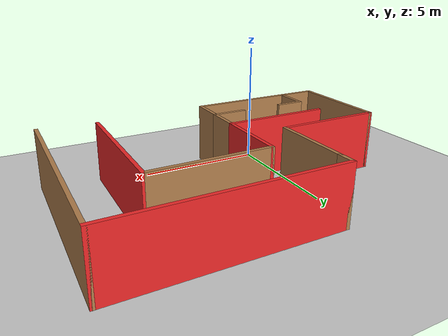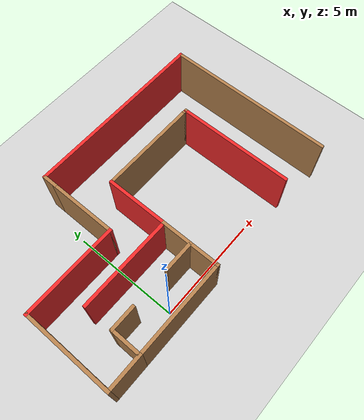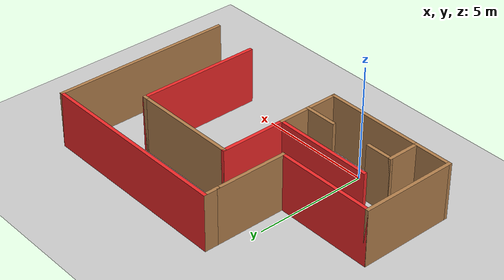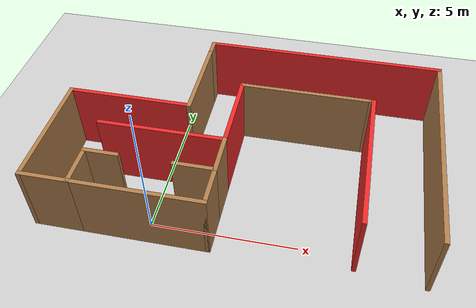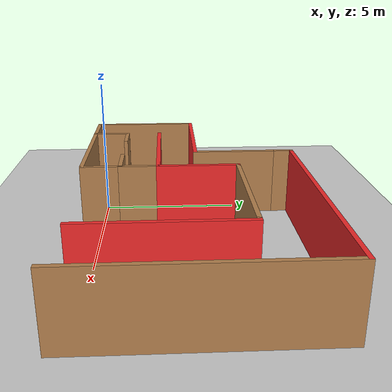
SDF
<sdf version="1.6">
 <world name="default">
  <light name="sun" type="directional">
   <pose>0 0 10 0 -0 0</pose>
   <diffuse>0.8 0.8 0.8 1</diffuse>
   <specular>0.2 0.2 0.2 1</specular>
   <attenuation>
    <range>1000</range>
    <constant>0.9</constant>
    <linear>0.01</linear>
    <quadratic>0.001</quadratic>
   </attenuation>
   <direction>-0.5 0.1 -0.9</direction>
  </light>
  <model name="ground_plane">
   <static>1</static>
   <link name="link">
    <collision name="collision">
     <geometry><plane><normal>0 0 1</normal><size>100 100</size></plane></geometry>
     <surface>
      <contact><collide_bitmask>65535</collide_bitmask></contact>
      <friction><ode><mu>100</mu><mu2>50</mu2></ode></friction>
     </surface>
    </collision>
    <visual name="visual">
     <cast_shadows>0</cast_shadows>
     <geometry><plane><normal>0 0 1</normal><size>100 100</size></plane></geometry>
     <material>
      <script><uri>file://media/materials/scripts/gazebo.material</uri><name>Gazebo/Grey</name></script>
     </material>
    </visual>
   </link>
  </model>
  <gravity>0 0 -9.8</gravity>
  <magnetic_field>6e-06 2.3e-05 -4.2e-05</magnetic_field>
  <atmosphere type="adiabatic"/>
  <physics name="default_physics" default="0" type="ode">
   <max_step_size>0.001</max_step_size>
   <real_time_factor>1</real_time_factor>
   <real_time_update_rate>1000</real_time_update_rate>
  </physics>
  <scene><ambient>0.4 0.4 0.4 1</ambient><background>0.7 0.7 0.7 1</background><shadows>1</shadows></scene>
  <audio><device>default</device></audio>
  <spherical_coordinates>
   <surface_model>EARTH_WGS84</surface_model>
   <latitude_deg>0</latitude_deg>
   <longitude_deg>0</longitude_deg>
   <elevation>0</elevation>
   <heading_deg>0</heading_deg>
  </spherical_coordinates>
  <model name="Untitled123">
   <pose>2.66631 3.26085 0 0 -0 0</pose>
   <link name="Wall_0">
    <collision name="Wall_0_Collision">
     <geometry><box><size>1.25 0.15 2.5</size></box></geometry>
     <pose>0 0 1.25 0 -0 0</pose>
    </collision>
    <visual name="Wall_0_Visual">
     <pose>0 0 1.25 0 -0 0</pose>
     <geometry><box><size>1.25 0.15 2.5</size></box></geometry>
     <material>
      <script><uri>file://media/materials/scripts/gazebo.material</uri><name>Gazebo/Wood</name></script>
      <ambient>1 1 1 1</ambient>
     </material>
     <meta><layer>0</layer></meta>
    </visual>
    <pose>-4.325 -2.525 0 0 -0 0</pose>
   </link>
   <link name="Wall_11">
    <collision name="Wall_11_Collision">
     <geometry><box><size>1.5 0.15 2.5</size></box></geometry>
     <pose>0 0 1.25 0 -0 0</pose>
    </collision>
    <visual name="Wall_11_Visual">
     <pose>0 0 1.25 0 -0 0</pose>
     <geometry><box><size>1.5 0.15 2.5</size></box></geometry>
     <material>
      <script><uri>file://media/materials/scripts/gazebo.material</uri><name>Gazebo/Wood</name></script>
      <ambient>1 1 1 1</ambient>
     </material>
     <meta><layer>0</layer></meta>
    </visual>
    <pose>-0.525 -1.85 0 0 -0 1.5708</pose>
   </link>
   <link name="Wall_12">
    <collision name="Wall_12_Collision">
     <geometry><box><size>4.5 0.15 2.5</size></box></geometry>
     <pose>0 0 1.25 0 -0 0</pose>
    </collision>
    <visual name="Wall_12_Visual">
     <pose>0 0 1.25 0 -0 0</pose>
     <geometry><box><size>4.5 0.15 2.5</size></box></geometry>
     <material>
      <script><uri>file://media/materials/scripts/gazebo.material</uri><name>Gazebo/Grey</name></script>
      <ambient>0.937255 0.160784 0.160784 1</ambient>
     </material>
     <meta><layer>0</layer></meta>
    </visual>
    <pose>-2.7 -1.175 0 0 -0 3.14159</pose>
   </link>
   <link name="Wall_14">
    <collision name="Wall_14_Collision">
     <geometry><box><size>3 0.15 2.5</size></box></geometry>
     <pose>0 0 1.25 0 -0 0</pose>
    </collision>
    <visual name="Wall_14_Visual">
     <pose>0 0 1.25 0 -0 0</pose>
     <geometry><box><size>3 0.15 2.5</size></box></geometry>
     <material>
      <script><uri>file://media/materials/scripts/gazebo.material</uri><name>Gazebo/Grey</name></script>
      <ambient>0.937255 0.160784 0.160784 1</ambient>
     </material>
     <meta><layer>0</layer></meta>
    </visual>
    <pose>-0.525 0.25 0 0 -0 1.5708</pose>
   </link>
   <link name="Wall_2">
    <collision name="Wall_2_Collision">
     <geometry><box><size>1.5 0.15 2.5</size></box></geometry>
     <pose>0 0 1.25 0 -0 0</pose>
    </collision>
    <visual name="Wall_2_Visual">
     <pose>0 0 1.25 0 -0 0</pose>
     <geometry><box><size>1.5 0.15 2.5</size></box></geometry>
     <material>
      <script><uri>file://media/materials/scripts/gazebo.material</uri><name>Gazebo/Wood</name></script>
      <ambient>1 1 1 1</ambient>
     </material>
     <meta><layer>0</layer></meta>
    </visual>
    <pose>-4.875 -3.2 0 0 -0 -1.5708</pose>
   </link>
   <link name="Wall_21">
    <collision name="Wall_21_Collision">
     <geometry><box><size>3.25 0.15 2.5</size></box></geometry>
     <pose>0 0 1.25 0 -0 0</pose>
    </collision>
    <visual name="Wall_21_Visual">
     <pose>0 0 1.25 0 -0 0</pose>
     <geometry><box><size>3.25 0.15 2.5</size></box></geometry>
     <material>
      <script><uri>file://media/materials/scripts/gazebo.material</uri><name>Gazebo/Wood</name></script>
      <ambient>1 1 1 1</ambient>
     </material>
     <meta><layer>0</layer></meta>
    </visual>
    <pose>-2.125 1.775 0 0 -0 1.5708</pose>
   </link>
   <link name="Wall_22">
    <collision name="Wall_22_Collision">
     <geometry><box><size>0.75 0.15 2.5</size></box></geometry>
     <pose>0 0 1.25 0 -0 0</pose>
    </collision>
    <visual name="Wall_22_Visual">
     <pose>0 0 1.25 0 -0 0</pose>
     <geometry><box><size>0.75 0.15 2.5</size></box></geometry>
     <material>
      <script><uri>file://media/materials/scripts/gazebo.material</uri><name>Gazebo/Wood</name></script>
      <ambient>1 1 1 1</ambient>
     </material>
     <meta><layer>0</layer></meta>
    </visual>
    <pose>-2.125 3.625 0 0 -0 1.5708</pose>
   </link>
   <link name="Wall_23">
    <collision name="Wall_23_Collision">
     <geometry><box><size>8.75 0.15 2.5</size></box></geometry>
     <pose>0 0 1.25 0 -0 0</pose>
    </collision>
    <visual name="Wall_23_Visual">
     <pose>0 0 1.25 0 -0 0</pose>
     <geometry><box><size>8.75 0.15 2.5</size></box></geometry>
     <material>
      <script><uri>file://media/materials/scripts/gazebo.material</uri><name>Gazebo/Grey</name></script>
      <ambient>0.937255 0.160784 0.160784 1</ambient>
     </material>
     <meta><layer>0</layer></meta>
    </visual>
    <pose>2.175 3.925 0 0 -0 0</pose>
   </link>
   <link name="Wall_24">
    <collision name="Wall_24_Collision">
     <geometry><box><size>8 0.15 2.5</size></box></geometry>
     <pose>0 0 1.25 0 -0 0</pose>
    </collision>
    <visual name="Wall_24_Visual">
     <pose>0 0 1.25 0 -0 0</pose>
     <geometry><box><size>8 0.15 2.5</size></box></geometry>
     <material>
      <script><uri>file://media/materials/scripts/gazebo.material</uri><name>Gazebo/Wood</name></script>
      <ambient>1 1 1 1</ambient>
     </material>
     <meta><layer>0</layer></meta>
    </visual>
    <pose>6.475 0 0 0 -0 -1.5708</pose>
   </link>
   <link name="Wall_26">
    <collision name="Wall_26_Collision">
     <geometry><box><size>4.75 0.15 2.5</size></box></geometry>
     <pose>0 0 1.25 0 -0 0</pose>
    </collision>
    <visual name="Wall_26_Visual">
     <pose>0 0 1.25 0 -0 0</pose>
     <geometry><box><size>4.75 0.15 2.5</size></box></geometry>
     <material>
      <script><uri>file://media/materials/scripts/gazebo.material</uri><name>Gazebo/Wood</name></script>
      <ambient>1 1 1 1</ambient>
     </material>
     <meta><layer>0</layer></meta>
    </visual>
    <pose>1.775 1.675 0 0 -0 0</pose>
   </link>
   <link name="Wall_27">
    <collision name="Wall_27_Collision">
     <geometry><box><size>0.25 0.15 2.5</size></box></geometry>
     <pose>0 0 1.25 0 -0 0</pose>
    </collision>
    <visual name="Wall_27_Visual">
     <pose>0 0 1.25 0 -0 0</pose>
     <geometry><box><size>0.25 0.15 2.5</size></box></geometry>
     <material>
      <script><uri>file://media/materials/scripts/gazebo.material</uri><name>Gazebo/Wood</name></script>
      <ambient>1 1 1 1</ambient>
     </material>
     <meta><layer>0</layer></meta>
    </visual>
    <pose>4.125 1.675 0 0 -0 0</pose>
   </link>
   <link name="Wall_28">
    <collision name="Wall_28_Collision">
     <geometry><box><size>5.5 0.15 2.5</size></box></geometry>
     <pose>0 0 1.25 0 -0 0</pose>
    </collision>
    <visual name="Wall_28_Visual">
     <pose>0 0 1.25 0 -0 0</pose>
     <geometry><box><size>5.5 0.15 2.5</size></box></geometry>
     <material>
      <script><uri>file://media/materials/scripts/gazebo.material</uri><name>Gazebo/Grey</name></script>
      <ambient>0.937255 0.160784 0.160784 1</ambient>
     </material>
     <meta><layer>0</layer></meta>
    </visual>
    <pose>4.175 -1 0 0 -0 -1.5708</pose>
   </link>
   <link name="Wall_3">
    <collision name="Wall_3_Collision">
     <geometry><box><size>4.5 0.15 2.5</size></box></geometry>
     <pose>0 0 1.25 0 -0 0</pose>
    </collision>
    <visual name="Wall_3_Visual">
     <pose>0 0 1.25 0 -0 0</pose>
     <geometry><box><size>4.5 0.15 2.5</size></box></geometry>
     <material>
      <script><uri>file://media/materials/scripts/gazebo.material</uri><name>Gazebo/Wood</name></script>
      <ambient>1 1 1 1</ambient>
     </material>
     <meta><layer>0</layer></meta>
    </visual>
    <pose>-2.7 -3.875 0 0 -0 0</pose>
   </link>
   <link name="Wall_4">
    <collision name="Wall_4_Collision">
     <geometry><box><size>1.5 0.15 2.5</size></box></geometry>
     <pose>0 0 1.25 0 -0 0</pose>
    </collision>
    <visual name="Wall_4_Visual">
     <pose>0 0 1.25 0 -0 0</pose>
     <geometry><box><size>1.5 0.15 2.5</size></box></geometry>
     <material>
      <script><uri>file://media/materials/scripts/gazebo.material</uri><name>Gazebo/Wood</name></script>
      <ambient>1 1 1 1</ambient>
     </material>
     <meta><layer>0</layer></meta>
    </visual>
    <pose>-0.525 -3.2 0 0 -0 1.5708</pose>
   </link>
   <link name="Wall_5">
    <collision name="Wall_5_Collision">
     <geometry><box><size>1.5 0.15 2.5</size></box></geometry>
     <pose>0 0 1.25 0 -0 0</pose>
    </collision>
    <visual name="Wall_5_Visual">
     <pose>0 0 1.25 0 -0 0</pose>
     <geometry><box><size>1.5 0.15 2.5</size></box></geometry>
     <material>
      <script><uri>file://media/materials/scripts/gazebo.material</uri><name>Gazebo/Wood</name></script>
      <ambient>1 1 1 1</ambient>
     </material>
     <meta><layer>0</layer></meta>
    </visual>
    <pose>-1.2 -2.525 0 0 -0 3.14159</pose>
   </link>
   <link name="Wall_7">
    <collision name="Wall_7_Collision">
     <geometry><box><size>1.75 0.15 2.5</size></box></geometry>
     <pose>0 0 1.25 0 -0 0</pose>
    </collision>
    <visual name="Wall_7_Visual">
     <pose>0 0 1.25 0 -0 0</pose>
     <geometry><box><size>1.75 0.15 2.5</size></box></geometry>
     <material>
      <script><uri>file://media/materials/scripts/gazebo.material</uri><name>Gazebo/Wood</name></script>
      <ambient>1 1 1 1</ambient>
     </material>
     <meta><layer>0</layer></meta>
    </visual>
    <pose>-5.675 -3.875 0 0 -0 3.14159</pose>
   </link>
   <link name="Wall_8">
    <collision name="Wall_8_Collision">
     <geometry><box><size>4.25 0.15 2.5</size></box></geometry>
     <pose>0 0 1.25 0 -0 0</pose>
    </collision>
    <visual name="Wall_8_Visual">
     <pose>0 0 1.25 0 -0 0</pose>
     <geometry><box><size>4.25 0.15 2.5</size></box></geometry>
     <material>
      <script><uri>file://media/materials/scripts/gazebo.material</uri><name>Gazebo/Wood</name></script>
      <ambient>1 1 1 1</ambient>
     </material>
     <meta><layer>0</layer></meta>
    </visual>
    <pose>-6.475 -1.825 0 0 -0 1.5708</pose>
   </link>
   <link name="Wall_9">
    <collision name="Wall_9_Collision">
     <geometry><box><size>4.5 0.15 2.5</size></box></geometry>
     <pose>0 0 1.25 0 -0 0</pose>
    </collision>
    <visual name="Wall_9_Visual">
     <pose>0 0 1.25 0 -0 0</pose>
     <geometry><box><size>4.5 0.15 2.5</size></box></geometry>
     <material>
      <script><uri>file://media/materials/scripts/gazebo.material</uri><name>Gazebo/Grey</name></script>
      <ambient>0.937255 0.160784 0.160784 1</ambient>
     </material>
     <meta><layer>0</layer></meta>
    </visual>
    <pose>-4.3 0.225 0 0 -0 0</pose>
   </link>
   <static>1</static>
  </model>
 </world>
</sdf>
